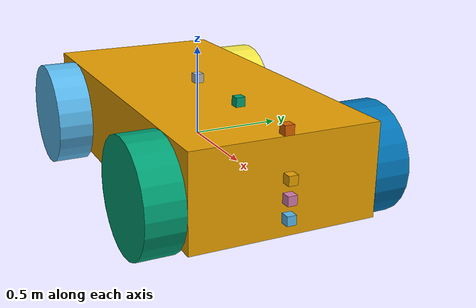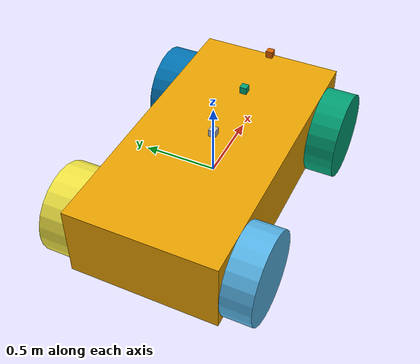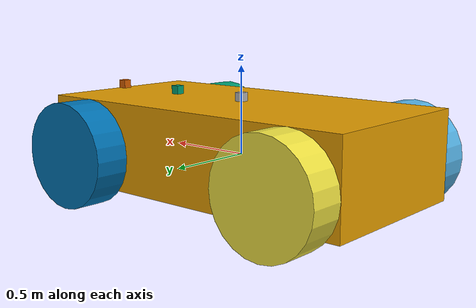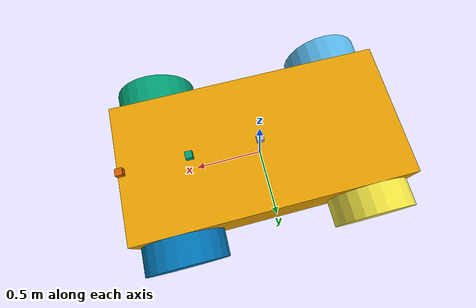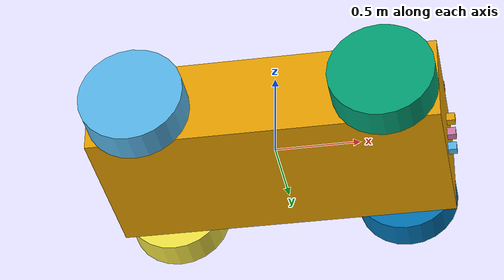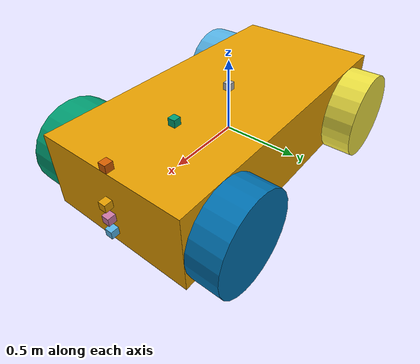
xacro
<?xml version='1.0'?>

<robot name="myRobot" xmlns:xacro="http://www.ros.org/wiki/xacro">
	<xacro:include filename="$(find robo)/urdf/plugin.gazebo"/>
	<xacro:property name="robot_name" value="atom" />
	<xacro:property name="chassis_mass" value="1"/>
	<xacro:property name="chassis_length" value="2"/>
	<xacro:property name="chassis_breadth" value="1"/>
	<xacro:property name="chassis_height" value="0.5"/>
	<xacro:property name="wheel_mass" value="1"/>
	<xacro:property name="wheel_width" value="0.2"/>
	<xacro:property name="wheel_radius" value="0.3"/>
	<xacro:property name="camera_mass" value="0.0001"/>

	<link name="chassis">
		<pose>0 0 0.1 0 0 0</pose>

		<inertial>
			<mass value="${chassis_mass}"/>
      		<origin xyz="0.0 0 0" rpy=" 0 0 0"/>

      		<inertia
      			ixx="${(chassis_height*chassis_height+chassis_breadth*chassis_breadth)/12}" ixy="0" ixz="0"
      			iyy="${chassis_mass*(chassis_height*chassis_height+chassis_length*chassis_length)/12}" iyz="0"
      			izz="${chassis_mass*(chassis_length*chassis_length+chassis_breadth*chassis_breadth)/12}"
      		/>
		</inertial>

		<collision name="collision">
			<origin xyz="0 0 0.05" rpy=" 0 0 0"/>
			<geometry>
				<box size="2 1 0.5"/>
			</geometry>
		</collision>

		<visual name="chassis_visual">
			<origin xyz="0 0 0.05" rpy=" 0 0 0"/>
			<geometry>
				<box size="2 1 0.5"/>
			</geometry>

		</visual>

	</link>

	<link name="right_wheel_back">
		<inertial>
			<mass value="${wheel_mass}"/>
			<origin xyz="0 0 0" rpy="0 1.5707 1.5707"/>
			<inertia
				ixx="${wheel_mass*(wheel_radius*wheel_radius)/2}" ixy="0.0" ixz="0.0"
				iyy="${wheel_mass*((wheel_radius*wheel_radius)+(wheel_width*wheel_width))/12}" iyz="0.0"
				izz="${wheel_mass*((wheel_radius*wheel_radius)+(wheel_width*wheel_width))/12}"
			/>
		</inertial>

		<visual>
			<origin xyz="0 0 0" rpy="0 1.5707 1.5707"/>
			<geometry>
				<cylinder radius="${wheel_radius}" length="${wheel_width}"/>
			</geometry>
		</visual>

		<collision>
			<origin xyz="0 0 0" rpy="0 1.5707 1.5707"/>
			<geometry>
				<cylinder radius="${wheel_radius}" length="${wheel_width}"/>
			</geometry>
		</collision>

	</link>

	<link name="right_wheel_front">
		<inertial>
			<mass value="${wheel_mass}"/>
			<origin xyz="0 0 0" rpy="0 1.5707 1.5707"/>
			<inertia
				ixx="${wheel_mass*(wheel_radius*wheel_radius)/2}" ixy="0.0" ixz="0.0"
				iyy="${wheel_mass*((wheel_radius*wheel_radius)+(wheel_width*wheel_width))/12}" iyz="0.0"
				izz="${wheel_mass*((wheel_radius*wheel_radius)+(wheel_width*wheel_width))/12}"
			/>
		</inertial>

		<visual>
			<origin xyz="0 0 0" rpy="0 1.5707 1.5707"/>
			<geometry>
				<cylinder radius="${wheel_radius}" length="${wheel_width}"/>
			</geometry>
		</visual>

		<collision>
			<origin xyz="0 0 0" rpy="0 1.5707 1.5707"/>
			<geometry>
				<cylinder radius="${wheel_radius}" length="${wheel_width}"/>
			</geometry>
		</collision>

	</link>

	<link name="left_wheel_back">
		<inertial>
			<mass value="${wheel_mass}"/>
			<origin xyz="0 0 0" rpy="0 1.5707 1.5707"/>
			<inertia
				ixx="${wheel_mass*(wheel_radius*wheel_radius)/2}" ixy="0.0" ixz="0.0"
				iyy="${wheel_mass*((wheel_radius*wheel_radius)+(wheel_width*wheel_width))/12}" iyz="0.0"
				izz="${wheel_mass*((wheel_radius*wheel_radius)+(wheel_width*wheel_width))/12}"
			/>
		</inertial>

		<visual>
			<origin xyz="0 0 0" rpy="0 1.5707 1.5707"/>
			<geometry>
				<cylinder radius="${wheel_radius}" length="${wheel_width}"/>
			</geometry>
		</visual>

		<collision>
			<origin xyz="0 0 0" rpy="0 1.5707 1.5707"/>
			<geometry>
				<cylinder radius="${wheel_radius}" length="${wheel_width}"/>
			</geometry>
		</collision>

	</link>

	<link name="left_wheel_front">
		<inertial>
			<mass value="${wheel_mass}"/>
			<origin xyz="0 0 0" rpy="0 1.5707 1.5707"/>
			<inertia
				ixx="${wheel_mass*(wheel_radius*wheel_radius)/2}" ixy="0.0" ixz="0.0"
				iyy="${wheel_mass*((wheel_radius*wheel_radius)+(wheel_width*wheel_width))/12}" iyz="0.0"
				izz="${wheel_mass*((wheel_radius*wheel_radius)+(wheel_width*wheel_width))/12}"
			/>
		</inertial>

		<visual>
			<origin xyz="0 0 0" rpy="0 1.5707 1.5707"/>
			<geometry>
				<cylinder radius="${wheel_radius}" length="${wheel_width}"/>
			</geometry>
		</visual>

		<collision>
			<origin xyz="0 0 0" rpy="0 1.5707 1.5707"/>
			<geometry>
				<cylinder radius="${wheel_radius}" length="${wheel_width}"/>
			</geometry>
		</collision>

	</link>

	<link name="camera">
		<inertial>
			<mass value="${camera_mass}"/>
			<origin xyz="0 0 0" rpy="0 0 0"/>
			<inertia
				ixx="0.0001" ixy="0.0" ixz="0.0"
				iyy="0.0001" iyz="0.0"
				izz="0.0001"
			/>
		</inertial>

		<visual>
			<geometry>
				<box size="0.05 0.05 0.05"/>
			</geometry>
		</visual>

		<collision>
			<geometry>
				<box size="0.05 0.05 0.05"/>
			</geometry>
		</collision>
	</link>

	<link name="kinect">
		<inertial>
			<mass value="${camera_mass}"/>
			<origin xyz="0 0 0" rpy="0 0 0"/>
			<inertia
				ixx="0.0001" ixy="0.0" ixz="0.0"
				iyy="0.0001" iyz="0.0"
				izz="0.0001"
			/>
		</inertial>

		<visual>
			<geometry>
				<box size="0.05 0.05 0.05"/>
			</geometry>
		</visual>

		<collision>
			<geometry>
				<box size="0.05 0.05 0.05"/>
			</geometry>
		</collision>
	</link>

	<link name="gps">
		<inertial>
			<mass value="${camera_mass}"/>
			<origin xyz="0 0 0" rpy="0 0 0"/>
			<inertia
				ixx="0.0001" ixy="0.0" ixz="0.0"
				iyy="0.0001" iyz="0.0"
				izz="0.0001"
			/>
		</inertial>

		<visual>
			<geometry>
				<box size="0.05 0.05 0.05"/>
			</geometry>
		</visual>

		<collision>
			<geometry>
				<box size="0.05 0.05 0.05"/>
			</geometry>
		</collision>
	</link>

	<link name="laser">
		<inertial>
			<mass value="${camera_mass}"/>
			<origin xyz="0 0 0" rpy="0 0 0"/>
			<inertia
				ixx="0.0001" ixy="0.0" ixz="0.0"
				iyy="0.0001" iyz="0.0"
				izz="0.0001"
			/>
		</inertial>

		<visual>
			<geometry>
				<box size="0.05 0.05 0.05"/>
			</geometry>
		</visual>

		<collision>
			<geometry>
				<box size="0.05 0.05 0.05"/>
			</geometry>
		</collision>
	</link>

	<link name="sonar_link">
		<inertial>
			<mass value="${camera_mass}"/>
			<origin xyz="0 0 0" rpy="0 0 0"/>
			<inertia
				ixx="0.0001" ixy="0.0" ixz="0.0"
				iyy="0.0001" iyz="0.0"
				izz="0.0001"
			/>
		</inertial>

		<visual>
			<geometry>
				<box size="0.05 0.05 0.05"/>
			</geometry>
		</visual>

		<collision>
			<geometry>
				<box size="0.05 0.05 0.05"/>
			</geometry>
		</collision>
	</link>

	<link name="imu_link">
		<inertial>
			<mass value="${camera_mass}"/>
			<origin xyz="0 0 0" rpy="0 0 0"/>
			<inertia
				ixx="0.0001" ixy="0.0" ixz="0.0"
				iyy="0.0001" iyz="0.0"
				izz="0.0001"
			/>
		</inertial>

		<visual>
			<geometry>
				<box size="0.05 0.05 0.05"/>
			</geometry>
		</visual>

		<collision>
			<geometry>
				<box size="0.05 0.05 0.05"/>
			</geometry>
		</collision>
	</link>

	<joint type="fixed" name="imu_joint">
	    <origin xyz="0.5 0 0.325" rpy="0 0 0"/>
	    <parent link="chassis"/>
	    <child link="imu_link" />
	    <axis xyz="0 1 0" rpy="0 0 0"/>
	</joint>

	<joint type="fixed" name="sonar_joint">
	    <origin xyz="1.025 0 -0.1" rpy="0 0 0"/>
	    <parent link="chassis"/>
	    <child link="sonar_link" />
	    <axis xyz="0 1 0" rpy="0 0 0"/>
	</joint>

	<joint type="fixed" name="laser_joint">
	    <origin xyz="1.025 0 0.1" rpy="0 0 0"/>
	    <parent link="chassis"/>
	    <child link="laser" />
	    <axis xyz="0 1 0" rpy="0 0 0"/>
	</joint>

	<joint type="fixed" name="kinect_joint">
	    <origin xyz="1.025 0 0" rpy="0 0 0"/>
	    <parent link="chassis"/>
	    <child link="kinect" />
	    <axis xyz="0 1 0" rpy="0 0 0"/>
	</joint>

	<joint type="fixed" name="gps_joint">
	    <origin xyz="0 0 0.325" rpy="0 0 0"/>
	    <parent link="chassis"/>
	    <child link="gps" />
	    <axis xyz="0 1 0" rpy="0 0 0"/>
	</joint>

	<joint type="fixed" name="cam_joint">
	    <origin xyz="0.975 0 0.325" rpy="0 0 0"/>
	    <parent link="chassis"/>
	    <child link="camera" />
	    <axis xyz="0 1 0" rpy="0 0 0"/>
	</joint>

	<joint type="continuous" name="right_wheel_hinge_back">
	    <origin xyz="-0.7 -0.6 0" rpy="0 0 0" />
	    <parent link="chassis"/>
	    <child link="right_wheel_back" />
	    <axis xyz="0 1 0" rpy="0 0 0" />
	    <limit effort="10000" velocity="1000" />
	</joint>

	<joint type="continuous" name="right_wheel_hinge_front">
	    <origin xyz="0.7 -0.6 0" rpy="0 0 0" />
	    <parent link="chassis"/>
	    <child link="right_wheel_front" />
	    <axis xyz="0 1 0" rpy="0 0 0" />
	    <limit effort="10000" velocity="1000" />
	</joint>

	<joint type="continuous" name="left_wheel_hinge_back">
	    <origin xyz="-0.7 0.6 0" rpy="0 0 0" />
	    <parent link="chassis"/>
	    <child link="left_wheel_back" />
	    <axis xyz="0 1 0" rpy="0 0 0" />
	    <limit effort="10000" velocity="1000" />
	</joint>

	<joint type="continuous" name="left_wheel_hinge_front">
	    <origin xyz="0.7 0.6 0" rpy="0 0 0" />
	    <parent link="chassis"/>
	    <child link="left_wheel_front" />
	    <axis xyz="0 1 0" rpy="0 0 0" />
	    <limit effort="10000" velocity="1000" />
	</joint>

</robot>
